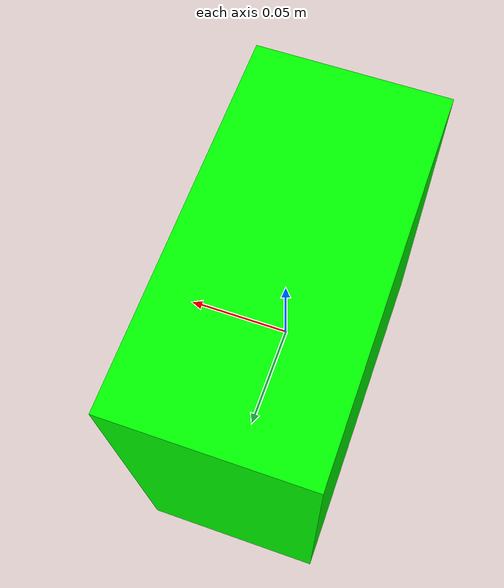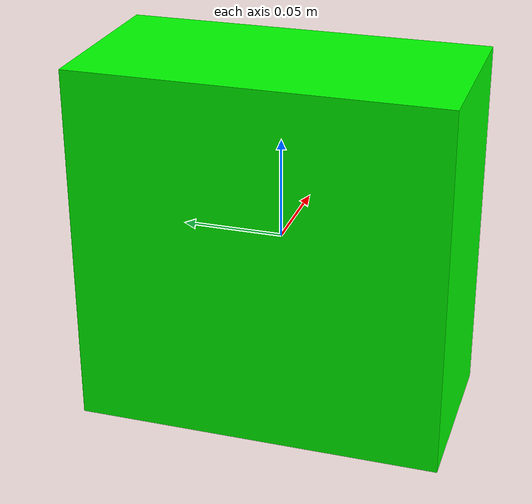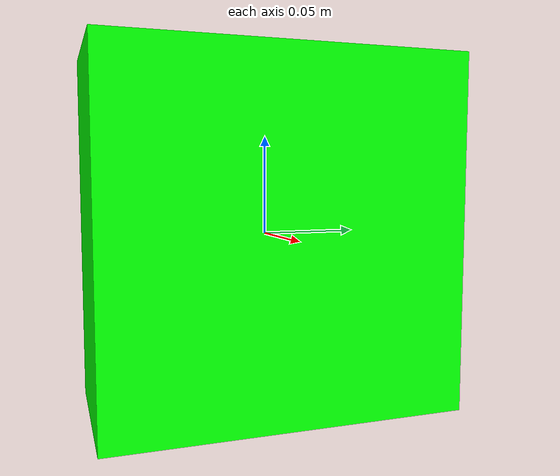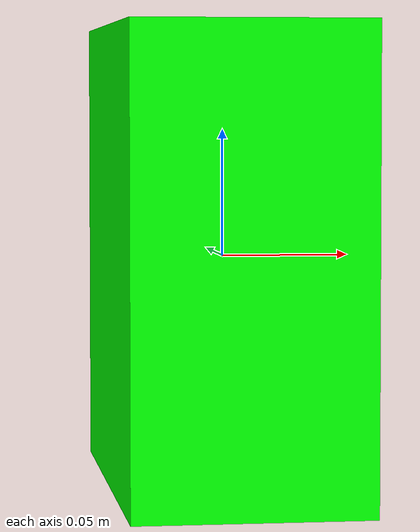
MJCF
<mujoco model="goal_box">
  <asset>
    <mesh file="meshes/goal_box.stl" name="goal_box" scale="0.0013 0.0013 0.0013"/>
  </asset>
  <worldbody>
    <body name="goal_box">
      <body name="collision">
        <geom pos="0 0 0" mesh="goal_box" type="mesh" density="5000" rgba="0 1 0 1" group="0" condim="6"/>
      </body>
      <body name="visual">
        <geom pos="0 0 0" mesh="goal_box" type="mesh" rgba="0 1 0 1" conaffinity="0" contype="0" group="1" mass="0.0001"/>
      </body>
      <site rgba="0 0 0 0" size="0.005" pos="0 0 -0.06" name="bottom_site"/>
      <site rgba="0 0 0 0" size="0.005" pos="0 0 0.04" name="top_site"/>
      <site rgba="0 0 0 0" size="0.005" pos="0.025 0.025 0" name="horizontal_radius_site"/>
    </body>
  </worldbody>
</mujoco>
